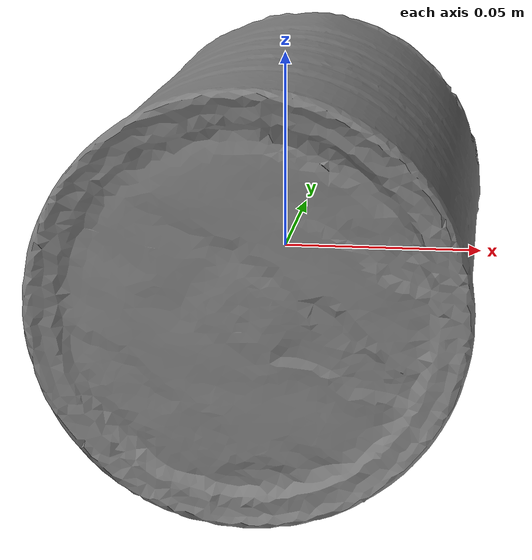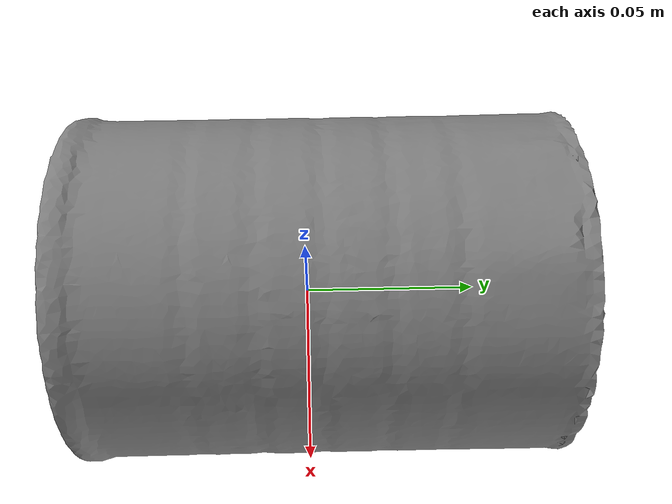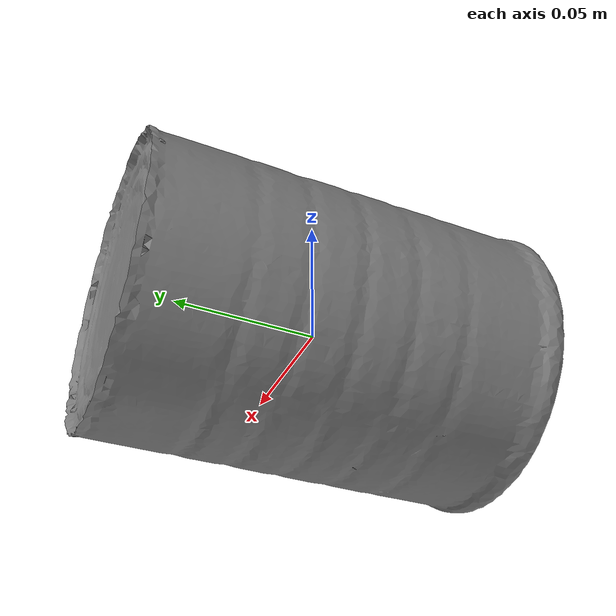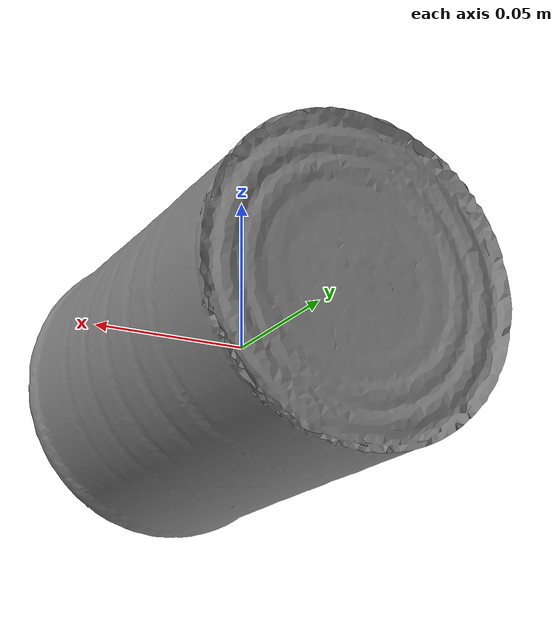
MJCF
<mujoco model="master_chef_can">
    <compiler angle="radian" meshdir="master_chef_can/stl" autolimits="true" />
    <default />
    <asset>
        <mesh name="master_chef_can" file="master_chef_can.stl" />
    </asset>
    <worldbody>
        <body name="master_chef_can">
            <geom type="mesh" mesh="master_chef_can" />
        </body>
    </worldbody>
    <equality />
    <contact />
</mujoco>
